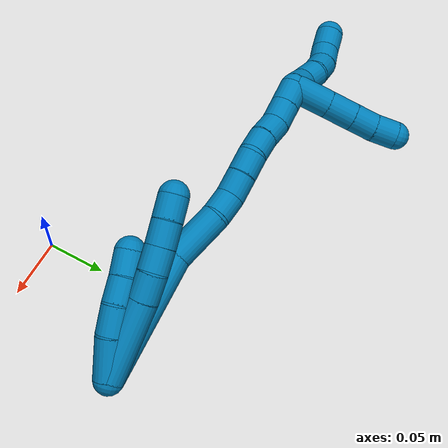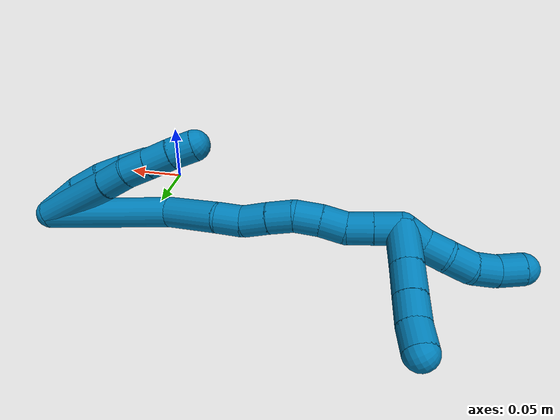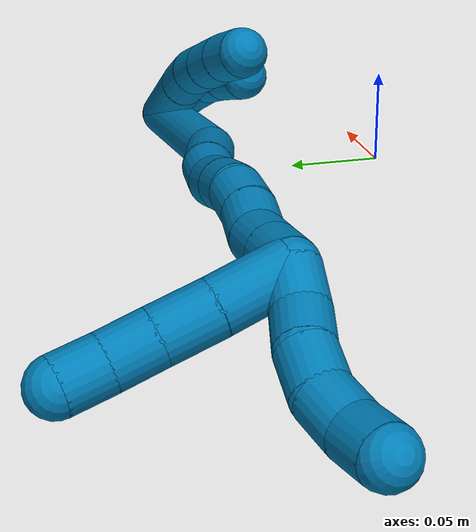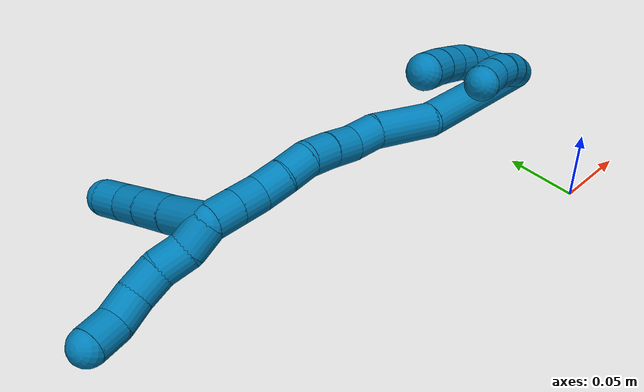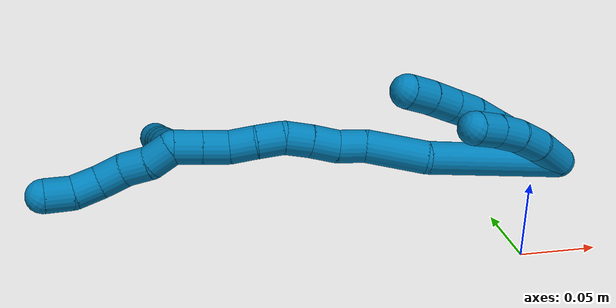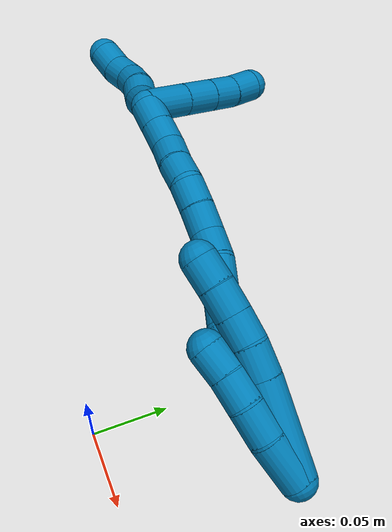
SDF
<sdf version="1.7">
 <world name="default">
  <model name="9">
   <static>0</static>
   <link name="9">
    <collision name="collision-cylinder-e_1_2_8">
     <pose>-0.00301 0.003709 0.033026 -0.111847 -0.090332 0.00506</pose>
     <geometry><cylinder><radius>0.0125</radius><length>0.06674</length></cylinder></geometry>
     <surface>
      <friction><ode><mu>1.16</mu><mu2>1.16</mu2><slip1>0</slip1><slip2>0</slip2></ode></friction>
      <contact><ode><kp>1e+06</kp><kd>1</kd><max_vel>0</max_vel><min_depth>0.001</min_depth></ode></contact>
     </surface>
    </collision>
    <visual name="visual-cylinder-e_1_2_8">
     <pose>-0.00301 0.003709 0.033026 -0.111847 -0.090332 0.00506</pose>
     <geometry><cylinder><radius>0.0125</radius><length>0.06674</length></cylinder></geometry>
     <material><ambient>0 0.490196 0.709804 1</ambient></material>
    </visual>
    <collision name="collision-cylinder-e_2_8_9">
     <pose>-0.006683 0.00791 0.077266 -0.04378 -0.058948 0.001291</pose>
     <geometry><cylinder><radius>0.0125</radius><length>0.022488</length></cylinder></geometry>
     <surface>
      <friction><ode><mu>1.16</mu><mu2>1.16</mu2><slip1>0</slip1><slip2>0</slip2></ode></friction>
      <contact><ode><kp>1e+06</kp><kd>1</kd><max_vel>0</max_vel><min_depth>0.001</min_depth></ode></contact>
     </surface>
    </collision>
    <visual name="visual-cylinder-e_2_8_9">
     <pose>-0.006683 0.00791 0.077266 -0.04378 -0.058948 0.001291</pose>
     <geometry><cylinder><radius>0.0125</radius><length>0.022488</length></cylinder></geometry>
     <material><ambient>0 0.490196 0.709804 1</ambient></material>
    </visual>
    <collision name="collision-cylinder-e_3_9_10">
     <pose>-0.009047 0.007744 0.098405 0.066151 -0.169459 -0.00562</pose>
     <geometry><cylinder><radius>0.0125</radius><length>0.020182</length></cylinder></geometry>
     <surface>
      <friction><ode><mu>1.16</mu><mu2>1.16</mu2><slip1>0</slip1><slip2>0</slip2></ode></friction>
      <contact><ode><kp>1e+06</kp><kd>1</kd><max_vel>0</max_vel><min_depth>0.001</min_depth></ode></contact>
     </surface>
    </collision>
    <visual name="visual-cylinder-e_3_9_10">
     <pose>-0.009047 0.007744 0.098405 0.066151 -0.169459 -0.00562</pose>
     <geometry><cylinder><radius>0.0125</radius><length>0.020182</length></cylinder></geometry>
     <material><ambient>0 0.490196 0.709804 1</ambient></material>
    </visual>
    <collision name="collision-cylinder-e_4_10_11">
     <pose>-0.012262 0.006102 0.118395 0.097476 -0.148478 -0.007256</pose>
     <geometry><cylinder><radius>0.0125</radius><length>0.020451</length></cylinder></geometry>
     <surface>
      <friction><ode><mu>1.16</mu><mu2>1.16</mu2><slip1>0</slip1><slip2>0</slip2></ode></friction>
      <contact><ode><kp>1e+06</kp><kd>1</kd><max_vel>0</max_vel><min_depth>0.001</min_depth></ode></contact>
     </surface>
    </collision>
    <visual name="visual-cylinder-e_4_10_11">
     <pose>-0.012262 0.006102 0.118395 0.097476 -0.148478 -0.007256</pose>
     <geometry><cylinder><radius>0.0125</radius><length>0.020451</length></cylinder></geometry>
     <material><ambient>0 0.490196 0.709804 1</ambient></material>
    </visual>
    <collision name="collision-cylinder-e_5_11_6">
     <pose>-0.015827 0.003735 0.13822 0.140707 -0.205305 -0.014519</pose>
     <geometry><cylinder><radius>0.0125</radius><length>0.020139</length></cylinder></geometry>
     <surface>
      <friction><ode><mu>1.16</mu><mu2>1.16</mu2><slip1>0</slip1><slip2>0</slip2></ode></friction>
      <contact><ode><kp>1e+06</kp><kd>1</kd><max_vel>0</max_vel><min_depth>0.001</min_depth></ode></contact>
     </surface>
    </collision>
    <visual name="visual-cylinder-e_5_11_6">
     <pose>-0.015827 0.003735 0.13822 0.140707 -0.205305 -0.014519</pose>
     <geometry><cylinder><radius>0.0125</radius><length>0.020139</length></cylinder></geometry>
     <material><ambient>0 0.490196 0.709804 1</ambient></material>
    </visual>
    <collision name="collision-cylinder-e_1_2_12">
     <pose>0.001821 -0.002942 0.016792 0.173442 0.10642 0.009261</pose>
     <geometry><cylinder><radius>0.0125</radius><length>0.03429</length></cylinder></geometry>
     <surface>
      <friction><ode><mu>1.16</mu><mu2>1.16</mu2><slip1>0</slip1><slip2>0</slip2></ode></friction>
      <contact><ode><kp>1e+06</kp><kd>1</kd><max_vel>0</max_vel><min_depth>0.001</min_depth></ode></contact>
     </surface>
    </collision>
    <visual name="visual-cylinder-e_1_2_12">
     <pose>0.001821 -0.002942 0.016792 0.173442 0.10642 0.009261</pose>
     <geometry><cylinder><radius>0.0125</radius><length>0.03429</length></cylinder></geometry>
     <material><ambient>0 0.490196 0.709804 1</ambient></material>
    </visual>
    <collision name="collision-cylinder-e_2_12_13">
     <pose>0.002962 -0.007181 0.04534 0.109895 -0.057468 -0.003162</pose>
     <geometry><cylinder><radius>0.0125</radius><length>0.023694</length></cylinder></geometry>
     <surface>
      <friction><ode><mu>1.16</mu><mu2>1.16</mu2><slip1>0</slip1><slip2>0</slip2></ode></friction>
      <contact><ode><kp>1e+06</kp><kd>1</kd><max_vel>0</max_vel><min_depth>0.001</min_depth></ode></contact>
     </surface>
    </collision>
    <visual name="visual-cylinder-e_2_12_13">
     <pose>0.002962 -0.007181 0.04534 0.109895 -0.057468 -0.003162</pose>
     <geometry><cylinder><radius>0.0125</radius><length>0.023694</length></cylinder></geometry>
     <material><ambient>0 0.490196 0.709804 1</ambient></material>
    </visual>
    <collision name="collision-cylinder-e_3_13_14">
     <pose>2e-06 -0.009899 0.067412 0.136893 -0.215494 -0.01483</pose>
     <geometry><cylinder><radius>0.0125</radius><length>0.021321</length></cylinder></geometry>
     <surface>
      <friction><ode><mu>1.16</mu><mu2>1.16</mu2><slip1>0</slip1><slip2>0</slip2></ode></friction>
      <contact><ode><kp>1e+06</kp><kd>1</kd><max_vel>0</max_vel><min_depth>0.001</min_depth></ode></contact>
     </surface>
    </collision>
    <visual name="visual-cylinder-e_3_13_14">
     <pose>2e-06 -0.009899 0.067412 0.136893 -0.215494 -0.01483</pose>
     <geometry><cylinder><radius>0.0125</radius><length>0.021321</length></cylinder></geometry>
     <material><ambient>0 0.490196 0.709804 1</ambient></material>
    </visual>
    <collision name="collision-cylinder-e_4_14_5">
     <pose>-0.004839 -0.013784 0.087447 0.248284 -0.250128 -0.031373</pose>
     <geometry><cylinder><radius>0.0125</radius><length>0.020696</length></cylinder></geometry>
     <surface>
      <friction><ode><mu>1.16</mu><mu2>1.16</mu2><slip1>0</slip1><slip2>0</slip2></ode></friction>
      <contact><ode><kp>1e+06</kp><kd>1</kd><max_vel>0</max_vel><min_depth>0.001</min_depth></ode></contact>
     </surface>
    </collision>
    <visual name="visual-cylinder-e_4_14_5">
     <pose>-0.004839 -0.013784 0.087447 0.248284 -0.250128 -0.031373</pose>
     <geometry><cylinder><radius>0.0125</radius><length>0.020696</length></cylinder></geometry>
     <material><ambient>0 0.490196 0.709804 1</ambient></material>
    </visual>
    <collision name="collision-cylinder-e_1_2_15">
     <pose>-0.026212 -0.00125 0.048205 0.025924 -0.497905 -0.006591</pose>
     <geometry><cylinder><radius>0.0125</radius><length>0.109769</length></cylinder></geometry>
     <surface>
      <friction><ode><mu>1.16</mu><mu2>1.16</mu2><slip1>0</slip1><slip2>0</slip2></ode></friction>
      <contact><ode><kp>1e+06</kp><kd>1</kd><max_vel>0</max_vel><min_depth>0.001</min_depth></ode></contact>
     </surface>
    </collision>
    <visual name="visual-cylinder-e_1_2_15">
     <pose>-0.026212 -0.00125 0.048205 0.025924 -0.497905 -0.006591</pose>
     <geometry><cylinder><radius>0.0125</radius><length>0.109769</length></cylinder></geometry>
     <material><ambient>0 0.490196 0.709804 1</ambient></material>
    </visual>
    <collision name="collision-cylinder-e_2_15_16">
     <pose>-0.063877 0.003796 0.115904 -0.312381 -0.509775 0.082015</pose>
     <geometry><cylinder><radius>0.0125</radius><length>0.046941</length></cylinder></geometry>
     <surface>
      <friction><ode><mu>1.16</mu><mu2>1.16</mu2><slip1>0</slip1><slip2>0</slip2></ode></friction>
      <contact><ode><kp>1e+06</kp><kd>1</kd><max_vel>0</max_vel><min_depth>0.001</min_depth></ode></contact>
     </surface>
    </collision>
    <visual name="visual-cylinder-e_2_15_16">
     <pose>-0.063877 0.003796 0.115904 -0.312381 -0.509775 0.082015</pose>
     <geometry><cylinder><radius>0.0125</radius><length>0.046941</length></cylinder></geometry>
     <material><ambient>0 0.490196 0.709804 1</ambient></material>
    </visual>
    <collision name="collision-cylinder-e_3_16_17">
     <pose>-0.081537 0.010683 0.143924 -0.069238 -0.628132 0.022498</pose>
     <geometry><cylinder><radius>0.0125</radius><length>0.021124</length></cylinder></geometry>
     <surface>
      <friction><ode><mu>1.16</mu><mu2>1.16</mu2><slip1>0</slip1><slip2>0</slip2></ode></friction>
      <contact><ode><kp>1e+06</kp><kd>1</kd><max_vel>0</max_vel><min_depth>0.001</min_depth></ode></contact>
     </surface>
    </collision>
    <visual name="visual-cylinder-e_3_16_17">
     <pose>-0.081537 0.010683 0.143924 -0.069238 -0.628132 0.022498</pose>
     <geometry><cylinder><radius>0.0125</radius><length>0.021124</length></cylinder></geometry>
     <material><ambient>0 0.490196 0.709804 1</ambient></material>
    </visual>
    <collision name="collision-cylinder-e_4_17_18">
     <pose>-0.091435 0.011893 0.162375 -0.062239 -0.355445 0.011183</pose>
     <geometry><cylinder><radius>0.0125</radius><length>0.021214</length></cylinder></geometry>
     <surface>
      <friction><ode><mu>1.16</mu><mu2>1.16</mu2><slip1>0</slip1><slip2>0</slip2></ode></friction>
      <contact><ode><kp>1e+06</kp><kd>1</kd><max_vel>0</max_vel><min_depth>0.001</min_depth></ode></contact>
     </surface>
    </collision>
    <visual name="visual-cylinder-e_4_17_18">
     <pose>-0.091435 0.011893 0.162375 -0.062239 -0.355445 0.011183</pose>
     <geometry><cylinder><radius>0.0125</radius><length>0.021214</length></cylinder></geometry>
     <material><ambient>0 0.490196 0.709804 1</ambient></material>
    </visual>
    <collision name="collision-cylinder-e_5_18_19">
     <pose>-0.099145 0.012706 0.181583 -0.02097 -0.408416 0.004343</pose>
     <geometry><cylinder><radius>0.0125</radius><length>0.020236</length></cylinder></geometry>
     <surface>
      <friction><ode><mu>1.16</mu><mu2>1.16</mu2><slip1>0</slip1><slip2>0</slip2></ode></friction>
      <contact><ode><kp>1e+06</kp><kd>1</kd><max_vel>0</max_vel><min_depth>0.001</min_depth></ode></contact>
     </surface>
    </collision>
    <visual name="visual-cylinder-e_5_18_19">
     <pose>-0.099145 0.012706 0.181583 -0.02097 -0.408416 0.004343</pose>
     <geometry><cylinder><radius>0.0125</radius><length>0.020236</length></cylinder></geometry>
     <material><ambient>0 0.490196 0.709804 1</ambient></material>
    </visual>
    <collision name="collision-cylinder-e_6_19_20">
     <pose>-0.109696 0.012135 0.198585 0.098911 -0.700054 -0.036134</pose>
     <geometry><cylinder><radius>0.0125</radius><length>0.020281</length></cylinder></geometry>
     <surface>
      <friction><ode><mu>1.16</mu><mu2>1.16</mu2><slip1>0</slip1><slip2>0</slip2></ode></friction>
      <contact><ode><kp>1e+06</kp><kd>1</kd><max_vel>0</max_vel><min_depth>0.001</min_depth></ode></contact>
     </surface>
    </collision>
    <visual name="visual-cylinder-e_6_19_20">
     <pose>-0.109696 0.012135 0.198585 0.098911 -0.700054 -0.036134</pose>
     <geometry><cylinder><radius>0.0125</radius><length>0.020281</length></cylinder></geometry>
     <material><ambient>0 0.490196 0.709804 1</ambient></material>
    </visual>
    <collision name="collision-cylinder-e_7_20_21">
     <pose>-0.123476 0.011478 0.213225 -0.015766 -0.808198 0.006742</pose>
     <geometry><cylinder><radius>0.0125</radius><length>0.020045</length></cylinder></geometry>
     <surface>
      <friction><ode><mu>1.16</mu><mu2>1.16</mu2><slip1>0</slip1><slip2>0</slip2></ode></friction>
      <contact><ode><kp>1e+06</kp><kd>1</kd><max_vel>0</max_vel><min_depth>0.001</min_depth></ode></contact>
     </surface>
    </collision>
    <visual name="visual-cylinder-e_7_20_21">
     <pose>-0.123476 0.011478 0.213225 -0.015766 -0.808198 0.006742</pose>
     <geometry><cylinder><radius>0.0125</radius><length>0.020045</length></cylinder></geometry>
     <material><ambient>0 0.490196 0.709804 1</ambient></material>
    </visual>
    <collision name="collision-cylinder-e_8_21_22">
     <pose>-0.135642 0.011111 0.228887 0.054467 -0.512058 -0.014261</pose>
     <geometry><cylinder><radius>0.0125</radius><length>0.020081</length></cylinder></geometry>
     <surface>
      <friction><ode><mu>1.16</mu><mu2>1.16</mu2><slip1>0</slip1><slip2>0</slip2></ode></friction>
      <contact><ode><kp>1e+06</kp><kd>1</kd><max_vel>0</max_vel><min_depth>0.001</min_depth></ode></contact>
     </surface>
    </collision>
    <visual name="visual-cylinder-e_8_21_22">
     <pose>-0.135642 0.011111 0.228887 0.054467 -0.512058 -0.014261</pose>
     <geometry><cylinder><radius>0.0125</radius><length>0.020081</length></cylinder></geometry>
     <material><ambient>0 0.490196 0.709804 1</ambient></material>
    </visual>
    <collision name="collision-cylinder-e_9_22_1">
     <pose>-0.145516 0.010128 0.246477 0.057214 -0.509642 -0.014907</pose>
     <geometry><cylinder><radius>0.0125</radius><length>0.020309</length></cylinder></geometry>
     <surface>
      <friction><ode><mu>1.16</mu><mu2>1.16</mu2><slip1>0</slip1><slip2>0</slip2></ode></friction>
      <contact><ode><kp>1e+06</kp><kd>1</kd><max_vel>0</max_vel><min_depth>0.001</min_depth></ode></contact>
     </surface>
    </collision>
    <visual name="visual-cylinder-e_9_22_1">
     <pose>-0.145516 0.010128 0.246477 0.057214 -0.509642 -0.014907</pose>
     <geometry><cylinder><radius>0.0125</radius><length>0.020309</length></cylinder></geometry>
     <material><ambient>0 0.490196 0.709804 1</ambient></material>
    </visual>
    <collision name="collision-cylinder-e_1_1_23">
     <pose>-0.16009 0.023006 0.252139 -1.80452 -0.610151 0.758733</pose>
     <geometry><cylinder><radius>0.0125</radius><length>0.033577</length></cylinder></geometry>
     <surface>
      <friction><ode><mu>1.16</mu><mu2>1.16</mu2><slip1>0</slip1><slip2>0</slip2></ode></friction>
      <contact><ode><kp>1e+06</kp><kd>1</kd><max_vel>0</max_vel><min_depth>0.001</min_depth></ode></contact>
     </surface>
    </collision>
    <visual name="visual-cylinder-e_1_1_23">
     <pose>-0.16009 0.023006 0.252139 -1.80452 -0.610151 0.758733</pose>
     <geometry><cylinder><radius>0.0125</radius><length>0.033577</length></cylinder></geometry>
     <material><ambient>0 0.490196 0.709804 1</ambient></material>
    </visual>
    <collision name="collision-cylinder-e_2_23_24">
     <pose>-0.176564 0.046573 0.246465 -1.81042 -0.579164 0.725449</pose>
     <geometry><cylinder><radius>0.0125</radius><length>0.025047</length></cylinder></geometry>
     <surface>
      <friction><ode><mu>1.16</mu><mu2>1.16</mu2><slip1>0</slip1><slip2>0</slip2></ode></friction>
      <contact><ode><kp>1e+06</kp><kd>1</kd><max_vel>0</max_vel><min_depth>0.001</min_depth></ode></contact>
     </surface>
    </collision>
    <visual name="visual-cylinder-e_2_23_24">
     <pose>-0.176564 0.046573 0.246465 -1.81042 -0.579164 0.725449</pose>
     <geometry><cylinder><radius>0.0125</radius><length>0.025047</length></cylinder></geometry>
     <material><ambient>0 0.490196 0.709804 1</ambient></material>
    </visual>
    <collision name="collision-cylinder-e_3_24_25">
     <pose>-0.189291 0.065309 0.24192 -1.8068 -0.588583 0.734361</pose>
     <geometry><cylinder><radius>0.0125</radius><length>0.021154</length></cylinder></geometry>
     <surface>
      <friction><ode><mu>1.16</mu><mu2>1.16</mu2><slip1>0</slip1><slip2>0</slip2></ode></friction>
      <contact><ode><kp>1e+06</kp><kd>1</kd><max_vel>0</max_vel><min_depth>0.001</min_depth></ode></contact>
     </surface>
    </collision>
    <visual name="visual-cylinder-e_3_24_25">
     <pose>-0.189291 0.065309 0.24192 -1.8068 -0.588583 0.734361</pose>
     <geometry><cylinder><radius>0.0125</radius><length>0.021154</length></cylinder></geometry>
     <material><ambient>0 0.490196 0.709804 1</ambient></material>
    </visual>
    <collision name="collision-cylinder-e_4_25_4">
     <pose>-0.200645 0.08232 0.239067 -1.66467 -0.573074 0.626092</pose>
     <geometry><cylinder><radius>0.0125</radius><length>0.020221</length></cylinder></geometry>
     <surface>
      <friction><ode><mu>1.16</mu><mu2>1.16</mu2><slip1>0</slip1><slip2>0</slip2></ode></friction>
      <contact><ode><kp>1e+06</kp><kd>1</kd><max_vel>0</max_vel><min_depth>0.001</min_depth></ode></contact>
     </surface>
    </collision>
    <visual name="visual-cylinder-e_4_25_4">
     <pose>-0.200645 0.08232 0.239067 -1.66467 -0.573074 0.626092</pose>
     <geometry><cylinder><radius>0.0125</radius><length>0.020221</length></cylinder></geometry>
     <material><ambient>0 0.490196 0.709804 1</ambient></material>
    </visual>
    <collision name="collision-cylinder-e_1_1_26">
     <pose>-0.159747 0.008217 0.258785 0.385453 -1.18828 -0.262159</pose>
     <geometry><cylinder><radius>0.0125</radius><length>0.02</length></cylinder></geometry>
     <surface>
      <friction><ode><mu>1.16</mu><mu2>1.16</mu2><slip1>0</slip1><slip2>0</slip2></ode></friction>
      <contact><ode><kp>1e+06</kp><kd>1</kd><max_vel>0</max_vel><min_depth>0.001</min_depth></ode></contact>
     </surface>
    </collision>
    <visual name="visual-cylinder-e_1_1_26">
     <pose>-0.159747 0.008217 0.258785 0.385453 -1.18828 -0.262159</pose>
     <geometry><cylinder><radius>0.0125</radius><length>0.02</length></cylinder></geometry>
     <material><ambient>0 0.490196 0.709804 1</ambient></material>
    </visual>
    <collision name="collision-cylinder-e_2_26_27">
     <pose>-0.177199 0.007686 0.267937 -0.15196 -0.957011 0.078935</pose>
     <geometry><cylinder><radius>0.0125</radius><length>0.02</length></cylinder></geometry>
     <surface>
      <friction><ode><mu>1.16</mu><mu2>1.16</mu2><slip1>0</slip1><slip2>0</slip2></ode></friction>
      <contact><ode><kp>1e+06</kp><kd>1</kd><max_vel>0</max_vel><min_depth>0.001</min_depth></ode></contact>
     </surface>
    </collision>
    <visual name="visual-cylinder-e_2_26_27">
     <pose>-0.177199 0.007686 0.267937 -0.15196 -0.957011 0.078935</pose>
     <geometry><cylinder><radius>0.0125</radius><length>0.02</length></cylinder></geometry>
     <material><ambient>0 0.490196 0.709804 1</ambient></material>
    </visual>
    <collision name="collision-cylinder-e_3_27_28">
     <pose>-0.193794 0.006944 0.278778 0.303859 -1.00099 -0.167095</pose>
     <geometry><cylinder><radius>0.0125</radius><length>0.02</length></cylinder></geometry>
     <surface>
      <friction><ode><mu>1.16</mu><mu2>1.16</mu2><slip1>0</slip1><slip2>0</slip2></ode></friction>
      <contact><ode><kp>1e+06</kp><kd>1</kd><max_vel>0</max_vel><min_depth>0.001</min_depth></ode></contact>
     </surface>
    </collision>
    <visual name="visual-cylinder-e_3_27_28">
     <pose>-0.193794 0.006944 0.278778 0.303859 -1.00099 -0.167095</pose>
     <geometry><cylinder><radius>0.0125</radius><length>0.02</length></cylinder></geometry>
     <material><ambient>0 0.490196 0.709804 1</ambient></material>
    </visual>
    <collision name="collision-cylinder-e_4_28_29">
     <pose>-0.208636 0.001709 0.290681 0.491953 -0.697399 -0.182044</pose>
     <geometry><cylinder><radius>0.0125</radius><length>0.02</length></cylinder></geometry>
     <surface>
      <friction><ode><mu>1.16</mu><mu2>1.16</mu2><slip1>0</slip1><slip2>0</slip2></ode></friction>
      <contact><ode><kp>1e+06</kp><kd>1</kd><max_vel>0</max_vel><min_depth>0.001</min_depth></ode></contact>
     </surface>
    </collision>
    <visual name="visual-cylinder-e_4_28_29">
     <pose>-0.208636 0.001709 0.290681 0.491953 -0.697399 -0.182044</pose>
     <geometry><cylinder><radius>0.0125</radius><length>0.02</length></cylinder></geometry>
     <material><ambient>0 0.490196 0.709804 1</ambient></material>
    </visual>
    <collision name="collision-cylinder-e_5_29_3">
     <pose>-0.219598 -0.004115 0.306071 0.249858 -0.471163 -0.060271</pose>
     <geometry><cylinder><radius>0.0125</radius><length>0.02</length></cylinder></geometry>
     <surface>
      <friction><ode><mu>1.16</mu><mu2>1.16</mu2><slip1>0</slip1><slip2>0</slip2></ode></friction>
      <contact><ode><kp>1e+06</kp><kd>1</kd><max_vel>0</max_vel><min_depth>0.001</min_depth></ode></contact>
     </surface>
    </collision>
    <visual name="visual-cylinder-e_5_29_3">
     <pose>-0.219598 -0.004115 0.306071 0.249858 -0.471163 -0.060271</pose>
     <geometry><cylinder><radius>0.0125</radius><length>0.02</length></cylinder></geometry>
     <material><ambient>0 0.490196 0.709804 1</ambient></material>
    </visual>
    <collision name="collision-sphere-3">
     <pose>-0.224137 -0.006318 0.314705 0 -0 0</pose>
     <geometry><sphere><radius>0.0125</radius></sphere></geometry>
     <surface>
      <friction><ode><mu>1.16</mu><mu2>1.16</mu2><slip1>0</slip1><slip2>0</slip2></ode></friction>
      <contact><ode><kp>1e+06</kp><kd>1</kd><max_vel>0</max_vel><min_depth>0.001</min_depth></ode></contact>
     </surface>
    </collision>
    <visual name="visual-sphere-3">
     <pose>-0.224137 -0.006318 0.314705 0 -0 0</pose>
     <geometry><sphere><radius>0.0125</radius></sphere></geometry>
     <material><ambient>0 0.490196 0.709804 1</ambient></material>
    </visual>
    <collision name="collision-sphere-29">
     <pose>-0.215059 -0.001912 0.297437 0 -0 0</pose>
     <geometry><sphere><radius>0.0125</radius></sphere></geometry>
     <surface>
      <friction><ode><mu>1.16</mu><mu2>1.16</mu2><slip1>0</slip1><slip2>0</slip2></ode></friction>
      <contact><ode><kp>1e+06</kp><kd>1</kd><max_vel>0</max_vel><min_depth>0.001</min_depth></ode></contact>
     </surface>
    </collision>
    <visual name="visual-sphere-29">
     <pose>-0.215059 -0.001912 0.297437 0 -0 0</pose>
     <geometry><sphere><radius>0.0125</radius></sphere></geometry>
     <material><ambient>0 0.490196 0.709804 1</ambient></material>
    </visual>
    <collision name="collision-sphere-28">
     <pose>-0.202214 0.00533 0.283925 0 -0 0</pose>
     <geometry><sphere><radius>0.0125</radius></sphere></geometry>
     <surface>
      <friction><ode><mu>1.16</mu><mu2>1.16</mu2><slip1>0</slip1><slip2>0</slip2></ode></friction>
      <contact><ode><kp>1e+06</kp><kd>1</kd><max_vel>0</max_vel><min_depth>0.001</min_depth></ode></contact>
     </surface>
    </collision>
    <visual name="visual-sphere-28">
     <pose>-0.202214 0.00533 0.283925 0 -0 0</pose>
     <geometry><sphere><radius>0.0125</radius></sphere></geometry>
     <material><ambient>0 0.490196 0.709804 1</ambient></material>
    </visual>
    <collision name="collision-sphere-27">
     <pose>-0.185374 0.008558 0.27363 0 -0 0</pose>
     <geometry><sphere><radius>0.0125</radius></sphere></geometry>
     <surface>
      <friction><ode><mu>1.16</mu><mu2>1.16</mu2><slip1>0</slip1><slip2>0</slip2></ode></friction>
      <contact><ode><kp>1e+06</kp><kd>1</kd><max_vel>0</max_vel><min_depth>0.001</min_depth></ode></contact>
     </surface>
    </collision>
    <visual name="visual-sphere-27">
     <pose>-0.185374 0.008558 0.27363 0 -0 0</pose>
     <geometry><sphere><radius>0.0125</radius></sphere></geometry>
     <material><ambient>0 0.490196 0.709804 1</ambient></material>
    </visual>
    <collision name="collision-sphere-26">
     <pose>-0.169024 0.006814 0.262243 0 -0 0</pose>
     <geometry><sphere><radius>0.0125</radius></sphere></geometry>
     <surface>
      <friction><ode><mu>1.16</mu><mu2>1.16</mu2><slip1>0</slip1><slip2>0</slip2></ode></friction>
      <contact><ode><kp>1e+06</kp><kd>1</kd><max_vel>0</max_vel><min_depth>0.001</min_depth></ode></contact>
     </surface>
    </collision>
    <visual name="visual-sphere-26">
     <pose>-0.169024 0.006814 0.262243 0 -0 0</pose>
     <geometry><sphere><radius>0.0125</radius></sphere></geometry>
     <material><ambient>0 0.490196 0.709804 1</ambient></material>
    </visual>
    <collision name="collision-sphere-4">
     <pose>-0.206127 0.090778 0.238271 0 -0 0</pose>
     <geometry><sphere><radius>0.0125</radius></sphere></geometry>
     <surface>
      <friction><ode><mu>1.16</mu><mu2>1.16</mu2><slip1>0</slip1><slip2>0</slip2></ode></friction>
      <contact><ode><kp>1e+06</kp><kd>1</kd><max_vel>0</max_vel><min_depth>0.001</min_depth></ode></contact>
     </surface>
    </collision>
    <visual name="visual-sphere-4">
     <pose>-0.206127 0.090778 0.238271 0 -0 0</pose>
     <geometry><sphere><radius>0.0125</radius></sphere></geometry>
     <material><ambient>0 0.490196 0.709804 1</ambient></material>
    </visual>
    <collision name="collision-sphere-25">
     <pose>-0.195163 0.073862 0.239863 0 -0 0</pose>
     <geometry><sphere><radius>0.0125</radius></sphere></geometry>
     <surface>
      <friction><ode><mu>1.16</mu><mu2>1.16</mu2><slip1>0</slip1><slip2>0</slip2></ode></friction>
      <contact><ode><kp>1e+06</kp><kd>1</kd><max_vel>0</max_vel><min_depth>0.001</min_depth></ode></contact>
     </surface>
    </collision>
    <visual name="visual-sphere-25">
     <pose>-0.195163 0.073862 0.239863 0 -0 0</pose>
     <geometry><sphere><radius>0.0125</radius></sphere></geometry>
     <material><ambient>0 0.490196 0.709804 1</ambient></material>
    </visual>
    <collision name="collision-sphere-24">
     <pose>-0.183418 0.056755 0.243977 0 -0 0</pose>
     <geometry><sphere><radius>0.0125</radius></sphere></geometry>
     <surface>
      <friction><ode><mu>1.16</mu><mu2>1.16</mu2><slip1>0</slip1><slip2>0</slip2></ode></friction>
      <contact><ode><kp>1e+06</kp><kd>1</kd><max_vel>0</max_vel><min_depth>0.001</min_depth></ode></contact>
     </surface>
    </collision>
    <visual name="visual-sphere-24">
     <pose>-0.183418 0.056755 0.243977 0 -0 0</pose>
     <geometry><sphere><radius>0.0125</radius></sphere></geometry>
     <material><ambient>0 0.490196 0.709804 1</ambient></material>
    </visual>
    <collision name="collision-sphere-23">
     <pose>-0.169709 0.036391 0.248953 0 -0 0</pose>
     <geometry><sphere><radius>0.0125</radius></sphere></geometry>
     <surface>
      <friction><ode><mu>1.16</mu><mu2>1.16</mu2><slip1>0</slip1><slip2>0</slip2></ode></friction>
      <contact><ode><kp>1e+06</kp><kd>1</kd><max_vel>0</max_vel><min_depth>0.001</min_depth></ode></contact>
     </surface>
    </collision>
    <visual name="visual-sphere-23">
     <pose>-0.169709 0.036391 0.248953 0 -0 0</pose>
     <geometry><sphere><radius>0.0125</radius></sphere></geometry>
     <material><ambient>0 0.490196 0.709804 1</ambient></material>
    </visual>
    <collision name="collision-sphere-1">
     <pose>-0.15047 0.009621 0.255326 0 -0 0</pose>
     <geometry><sphere><radius>0.0125</radius></sphere></geometry>
     <surface>
      <friction><ode><mu>1.16</mu><mu2>1.16</mu2><slip1>0</slip1><slip2>0</slip2></ode></friction>
      <contact><ode><kp>1e+06</kp><kd>1</kd><max_vel>0</max_vel><min_depth>0.001</min_depth></ode></contact>
     </surface>
    </collision>
    <visual name="visual-sphere-1">
     <pose>-0.15047 0.009621 0.255326 0 -0 0</pose>
     <geometry><sphere><radius>0.0125</radius></sphere></geometry>
     <material><ambient>0 0.490196 0.709804 1</ambient></material>
    </visual>
    <collision name="collision-sphere-22">
     <pose>-0.140562 0.010634 0.237627 0 -0 0</pose>
     <geometry><sphere><radius>0.0125</radius></sphere></geometry>
     <surface>
      <friction><ode><mu>1.16</mu><mu2>1.16</mu2><slip1>0</slip1><slip2>0</slip2></ode></friction>
      <contact><ode><kp>1e+06</kp><kd>1</kd><max_vel>0</max_vel><min_depth>0.001</min_depth></ode></contact>
     </surface>
    </collision>
    <visual name="visual-sphere-22">
     <pose>-0.140562 0.010634 0.237627 0 -0 0</pose>
     <geometry><sphere><radius>0.0125</radius></sphere></geometry>
     <material><ambient>0 0.490196 0.709804 1</ambient></material>
    </visual>
    <collision name="collision-sphere-21">
     <pose>-0.130723 0.011588 0.220147 0 -0 0</pose>
     <geometry><sphere><radius>0.0125</radius></sphere></geometry>
     <surface>
      <friction><ode><mu>1.16</mu><mu2>1.16</mu2><slip1>0</slip1><slip2>0</slip2></ode></friction>
      <contact><ode><kp>1e+06</kp><kd>1</kd><max_vel>0</max_vel><min_depth>0.001</min_depth></ode></contact>
     </surface>
    </collision>
    <visual name="visual-sphere-21">
     <pose>-0.130723 0.011588 0.220147 0 -0 0</pose>
     <geometry><sphere><radius>0.0125</radius></sphere></geometry>
     <material><ambient>0 0.490196 0.709804 1</ambient></material>
    </visual>
    <collision name="collision-sphere-6">
     <pose>-0.01788 0.002353 0.147981 0 -0 0</pose>
     <geometry><sphere><radius>0.0125</radius></sphere></geometry>
     <surface>
      <friction><ode><mu>1.16</mu><mu2>1.16</mu2><slip1>0</slip1><slip2>0</slip2></ode></friction>
      <contact><ode><kp>1e+06</kp><kd>1</kd><max_vel>0</max_vel><min_depth>0.001</min_depth></ode></contact>
     </surface>
    </collision>
    <visual name="visual-sphere-6">
     <pose>-0.01788 0.002353 0.147981 0 -0 0</pose>
     <geometry><sphere><radius>0.0125</radius></sphere></geometry>
     <material><ambient>0 0.490196 0.709804 1</ambient></material>
    </visual>
    <collision name="collision-sphere-11">
     <pose>-0.013774 0.005118 0.128459 0 -0 0</pose>
     <geometry><sphere><radius>0.0125</radius></sphere></geometry>
     <surface>
      <friction><ode><mu>1.16</mu><mu2>1.16</mu2><slip1>0</slip1><slip2>0</slip2></ode></friction>
      <contact><ode><kp>1e+06</kp><kd>1</kd><max_vel>0</max_vel><min_depth>0.001</min_depth></ode></contact>
     </surface>
    </collision>
    <visual name="visual-sphere-11">
     <pose>-0.013774 0.005118 0.128459 0 -0 0</pose>
     <geometry><sphere><radius>0.0125</radius></sphere></geometry>
     <material><ambient>0 0.490196 0.709804 1</ambient></material>
    </visual>
    <collision name="collision-sphere-10">
     <pose>-0.010749 0.007086 0.10833 0 -0 0</pose>
     <geometry><sphere><radius>0.0125</radius></sphere></geometry>
     <surface>
      <friction><ode><mu>1.16</mu><mu2>1.16</mu2><slip1>0</slip1><slip2>0</slip2></ode></friction>
      <contact><ode><kp>1e+06</kp><kd>1</kd><max_vel>0</max_vel><min_depth>0.001</min_depth></ode></contact>
     </surface>
    </collision>
    <visual name="visual-sphere-10">
     <pose>-0.010749 0.007086 0.10833 0 -0 0</pose>
     <geometry><sphere><radius>0.0125</radius></sphere></geometry>
     <material><ambient>0 0.490196 0.709804 1</ambient></material>
    </visual>
    <collision name="collision-sphere-9">
     <pose>-0.007345 0.008401 0.08848 0 -0 0</pose>
     <geometry><sphere><radius>0.0125</radius></sphere></geometry>
     <surface>
      <friction><ode><mu>1.16</mu><mu2>1.16</mu2><slip1>0</slip1><slip2>0</slip2></ode></friction>
      <contact><ode><kp>1e+06</kp><kd>1</kd><max_vel>0</max_vel><min_depth>0.001</min_depth></ode></contact>
     </surface>
    </collision>
    <visual name="visual-sphere-9">
     <pose>-0.007345 0.008401 0.08848 0 -0 0</pose>
     <geometry><sphere><radius>0.0125</radius></sphere></geometry>
     <material><ambient>0 0.490196 0.709804 1</ambient></material>
    </visual>
    <collision name="collision-sphere-2">
     <geometry><sphere><radius>0.0125</radius></sphere></geometry>
     <surface>
      <friction><ode><mu>1.16</mu><mu2>1.16</mu2><slip1>0</slip1><slip2>0</slip2></ode></friction>
      <contact><ode><kp>1e+06</kp><kd>1</kd><max_vel>0</max_vel><min_depth>0.001</min_depth></ode></contact>
     </surface>
    </collision>
    <visual name="visual-sphere-2">
     <geometry><sphere><radius>0.0125</radius></sphere></geometry>
     <material><ambient>0 0.490196 0.709804 1</ambient></material>
    </visual>
    <collision name="collision-sphere-19">
     <pose>-0.103163 0.012901 0.190867 0 -0 0</pose>
     <geometry><sphere><radius>0.0125</radius></sphere></geometry>
     <surface>
      <friction><ode><mu>1.16</mu><mu2>1.16</mu2><slip1>0</slip1><slip2>0</slip2></ode></friction>
      <contact><ode><kp>1e+06</kp><kd>1</kd><max_vel>0</max_vel><min_depth>0.001</min_depth></ode></contact>
     </surface>
    </collision>
    <visual name="visual-sphere-19">
     <pose>-0.103163 0.012901 0.190867 0 -0 0</pose>
     <geometry><sphere><radius>0.0125</radius></sphere></geometry>
     <material><ambient>0 0.490196 0.709804 1</ambient></material>
    </visual>
    <collision name="collision-sphere-8">
     <pose>-0.006021 0.007419 0.066053 0 -0 0</pose>
     <geometry><sphere><radius>0.0125</radius></sphere></geometry>
     <surface>
      <friction><ode><mu>1.16</mu><mu2>1.16</mu2><slip1>0</slip1><slip2>0</slip2></ode></friction>
      <contact><ode><kp>1e+06</kp><kd>1</kd><max_vel>0</max_vel><min_depth>0.001</min_depth></ode></contact>
     </surface>
    </collision>
    <visual name="visual-sphere-8">
     <pose>-0.006021 0.007419 0.066053 0 -0 0</pose>
     <geometry><sphere><radius>0.0125</radius></sphere></geometry>
     <material><ambient>0 0.490196 0.709804 1</ambient></material>
    </visual>
    <collision name="collision-sphere-12">
     <pose>0.003642 -0.005884 0.033584 0 -0 0</pose>
     <geometry><sphere><radius>0.0125</radius></sphere></geometry>
     <surface>
      <friction><ode><mu>1.16</mu><mu2>1.16</mu2><slip1>0</slip1><slip2>0</slip2></ode></friction>
      <contact><ode><kp>1e+06</kp><kd>1</kd><max_vel>0</max_vel><min_depth>0.001</min_depth></ode></contact>
     </surface>
    </collision>
    <visual name="visual-sphere-12">
     <pose>0.003642 -0.005884 0.033584 0 -0 0</pose>
     <geometry><sphere><radius>0.0125</radius></sphere></geometry>
     <material><ambient>0 0.490196 0.709804 1</ambient></material>
    </visual>
    <collision name="collision-sphere-13">
     <pose>0.002281 -0.008478 0.057096 0 -0 0</pose>
     <geometry><sphere><radius>0.0125</radius></sphere></geometry>
     <surface>
      <friction><ode><mu>1.16</mu><mu2>1.16</mu2><slip1>0</slip1><slip2>0</slip2></ode></friction>
      <contact><ode><kp>1e+06</kp><kd>1</kd><max_vel>0</max_vel><min_depth>0.001</min_depth></ode></contact>
     </surface>
    </collision>
    <visual name="visual-sphere-13">
     <pose>0.002281 -0.008478 0.057096 0 -0 0</pose>
     <geometry><sphere><radius>0.0125</radius></sphere></geometry>
     <material><ambient>0 0.490196 0.709804 1</ambient></material>
    </visual>
    <collision name="collision-sphere-14">
     <pose>-0.002278 -0.011321 0.077729 0 -0 0</pose>
     <geometry><sphere><radius>0.0125</radius></sphere></geometry>
     <surface>
      <friction><ode><mu>1.16</mu><mu2>1.16</mu2><slip1>0</slip1><slip2>0</slip2></ode></friction>
      <contact><ode><kp>1e+06</kp><kd>1</kd><max_vel>0</max_vel><min_depth>0.001</min_depth></ode></contact>
     </surface>
    </collision>
    <visual name="visual-sphere-14">
     <pose>-0.002278 -0.011321 0.077729 0 -0 0</pose>
     <geometry><sphere><radius>0.0125</radius></sphere></geometry>
     <material><ambient>0 0.490196 0.709804 1</ambient></material>
    </visual>
    <collision name="collision-sphere-5">
     <pose>-0.007401 -0.016248 0.097166 0 -0 0</pose>
     <geometry><sphere><radius>0.0125</radius></sphere></geometry>
     <surface>
      <friction><ode><mu>1.16</mu><mu2>1.16</mu2><slip1>0</slip1><slip2>0</slip2></ode></friction>
      <contact><ode><kp>1e+06</kp><kd>1</kd><max_vel>0</max_vel><min_depth>0.001</min_depth></ode></contact>
     </surface>
    </collision>
    <visual name="visual-sphere-5">
     <pose>-0.007401 -0.016248 0.097166 0 -0 0</pose>
     <geometry><sphere><radius>0.0125</radius></sphere></geometry>
     <material><ambient>0 0.490196 0.709804 1</ambient></material>
    </visual>
    <collision name="collision-sphere-15">
     <pose>-0.052424 -0.0025 0.096409 0 -0 0</pose>
     <geometry><sphere><radius>0.0125</radius></sphere></geometry>
     <surface>
      <friction><ode><mu>1.16</mu><mu2>1.16</mu2><slip1>0</slip1><slip2>0</slip2></ode></friction>
      <contact><ode><kp>1e+06</kp><kd>1</kd><max_vel>0</max_vel><min_depth>0.001</min_depth></ode></contact>
     </surface>
    </collision>
    <visual name="visual-sphere-15">
     <pose>-0.052424 -0.0025 0.096409 0 -0 0</pose>
     <geometry><sphere><radius>0.0125</radius></sphere></geometry>
     <material><ambient>0 0.490196 0.709804 1</ambient></material>
    </visual>
    <collision name="collision-sphere-16">
     <pose>-0.07533 0.010092 0.135399 0 -0 0</pose>
     <geometry><sphere><radius>0.0125</radius></sphere></geometry>
     <surface>
      <friction><ode><mu>1.16</mu><mu2>1.16</mu2><slip1>0</slip1><slip2>0</slip2></ode></friction>
      <contact><ode><kp>1e+06</kp><kd>1</kd><max_vel>0</max_vel><min_depth>0.001</min_depth></ode></contact>
     </surface>
    </collision>
    <visual name="visual-sphere-16">
     <pose>-0.07533 0.010092 0.135399 0 -0 0</pose>
     <geometry><sphere><radius>0.0125</radius></sphere></geometry>
     <material><ambient>0 0.490196 0.709804 1</ambient></material>
    </visual>
    <collision name="collision-sphere-17">
     <pose>-0.087744 0.011274 0.15245 0 -0 0</pose>
     <geometry><sphere><radius>0.0125</radius></sphere></geometry>
     <surface>
      <friction><ode><mu>1.16</mu><mu2>1.16</mu2><slip1>0</slip1><slip2>0</slip2></ode></friction>
      <contact><ode><kp>1e+06</kp><kd>1</kd><max_vel>0</max_vel><min_depth>0.001</min_depth></ode></contact>
     </surface>
    </collision>
    <visual name="visual-sphere-17">
     <pose>-0.087744 0.011274 0.15245 0 -0 0</pose>
     <geometry><sphere><radius>0.0125</radius></sphere></geometry>
     <material><ambient>0 0.490196 0.709804 1</ambient></material>
    </visual>
    <collision name="collision-sphere-18">
     <pose>-0.095126 0.012511 0.1723 0 -0 0</pose>
     <geometry><sphere><radius>0.0125</radius></sphere></geometry>
     <surface>
      <friction><ode><mu>1.16</mu><mu2>1.16</mu2><slip1>0</slip1><slip2>0</slip2></ode></friction>
      <contact><ode><kp>1e+06</kp><kd>1</kd><max_vel>0</max_vel><min_depth>0.001</min_depth></ode></contact>
     </surface>
    </collision>
    <visual name="visual-sphere-18">
     <pose>-0.095126 0.012511 0.1723 0 -0 0</pose>
     <geometry><sphere><radius>0.0125</radius></sphere></geometry>
     <material><ambient>0 0.490196 0.709804 1</ambient></material>
    </visual>
    <collision name="collision-sphere-20">
     <pose>-0.116229 0.011369 0.206302 0 -0 0</pose>
     <geometry><sphere><radius>0.0125</radius></sphere></geometry>
     <surface>
      <friction><ode><mu>1.16</mu><mu2>1.16</mu2><slip1>0</slip1><slip2>0</slip2></ode></friction>
      <contact><ode><kp>1e+06</kp><kd>1</kd><max_vel>0</max_vel><min_depth>0.001</min_depth></ode></contact>
     </surface>
    </collision>
    <visual name="visual-sphere-20">
     <pose>-0.116229 0.011369 0.206302 0 -0 0</pose>
     <geometry><sphere><radius>0.0125</radius></sphere></geometry>
     <material><ambient>0 0.490196 0.709804 1</ambient></material>
    </visual>
    <inertial>
     <pose>-0.080044 0.009453 0.143281 0 -0 0</pose>
     <mass>0.75</mass>
     <inertia>
      <ixx>0.000154</ixx>
      <ixy>0</ixy>
      <ixz>0</ixz>
      <iyy>0.000197</iyy>
      <iyz>0</iyz>
      <izz>0.000114</izz>
     </inertia>
    </inertial>
   </link>
   <pose>0.077779 0.107893 0.011496 0.464562 -0.886395 -0.391263</pose>
  </model>
 </world>
</sdf>
